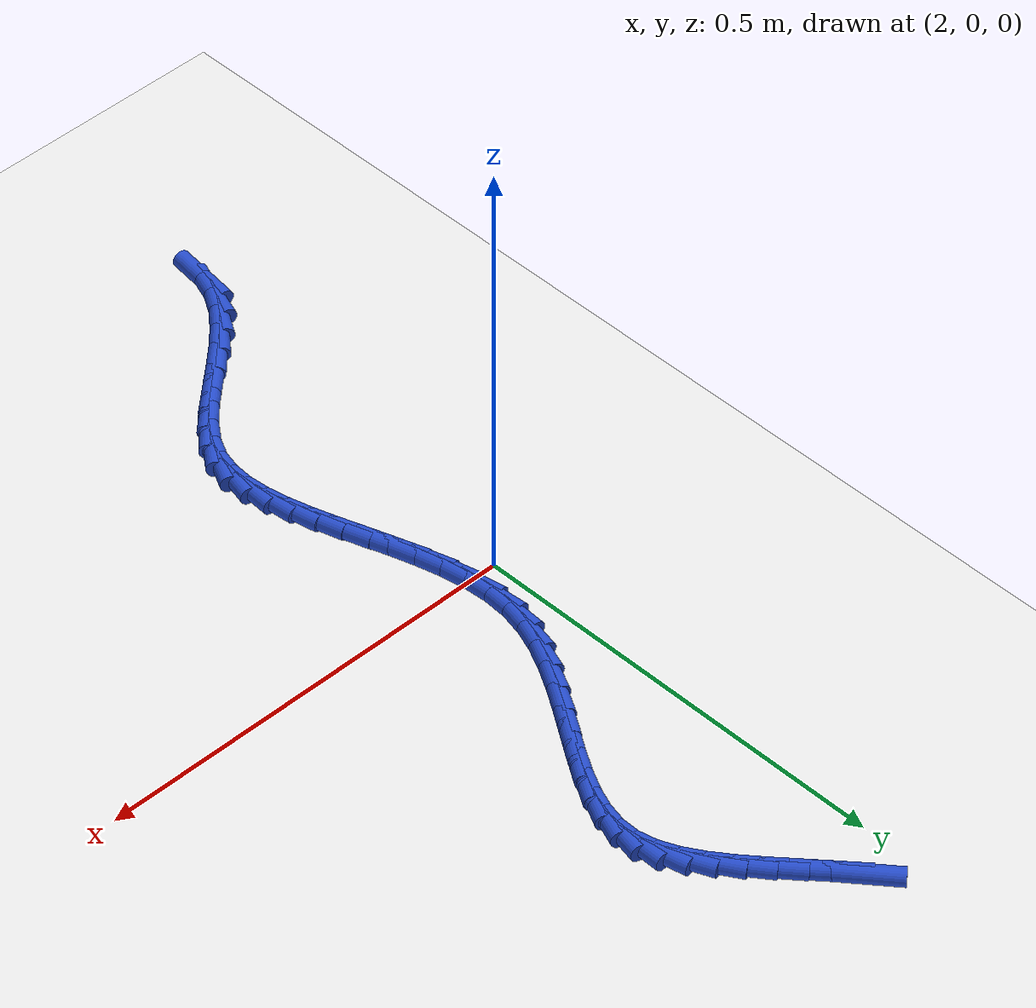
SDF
<sdf version="1.6">
 <world name="default">
  <model name="ground_plane">
   <static>1</static>
   <link name="link">
    <collision name="collision">
     <geometry><plane><normal>0 0 1</normal><size>100 100</size></plane></geometry>
     <surface><friction><ode><mu>100</mu><mu2>50</mu2></ode></friction></surface>
    </collision>
    <visual name="visual">
     <cast_shadows>0</cast_shadows>
     <geometry><plane><normal>0 0 1</normal><size>100 100</size></plane></geometry>
     <material>
      <script><uri>file://media/materials/scripts/gazebo.material</uri><name>Gazebo/WhiteGlow</name></script>
     </material>
    </visual>
   </link>
  </model>
  <model name="line">
   <link name="link_109">
    <pose>2.049838825899695 0.5468741078303482 0.01 0 1.57 -0.880973912480247</pose>
    <collision name="collision">
     <geometry><cylinder><radius>0.01</radius><length>0.08</length></cylinder></geometry>
    </collision>
    <visual name="visual">
     <material>
      <script><name>Gazebo/Blue</name><uri>file://media/materials/scripts/gazebo.material</uri></script>
     </material>
     <geometry><cylinder><radius>0.01</radius><length>0.08</length></cylinder></geometry>
    </visual>
   </link>
   <link name="link_110">
    <pose>2.0691689432498346 0.5234447302433037 0.01 0 1.57 -0.8529924557600874</pose>
    <collision name="collision">
     <geometry><cylinder><radius>0.01</radius><length>0.08</length></cylinder></geometry>
    </collision>
    <visual name="visual">
     <material>
      <script><name>Gazebo/Blue</name><uri>file://media/materials/scripts/gazebo.material</uri></script>
     </material>
     <geometry><cylinder><radius>0.01</radius><length>0.08</length></cylinder></geometry>
    </visual>
   </link>
   <link name="link_111">
    <pose>2.089221849179618 0.5004796149768256 0.01 0 1.57 -0.8502349842190474</pose>
    <collision name="collision">
     <geometry><cylinder><radius>0.01</radius><length>0.08</length></cylinder></geometry>
    </collision>
    <visual name="visual">
     <material>
      <script><name>Gazebo/Blue</name><uri>file://media/materials/scripts/gazebo.material</uri></script>
     </material>
     <geometry><cylinder><radius>0.01</radius><length>0.08</length></cylinder></geometry>
    </visual>
   </link>
   <link name="link_112">
    <pose>2.109081680831488 0.47786180213724955 0.01 0 1.57 -0.8735676255298784</pose>
    <collision name="collision">
     <geometry><cylinder><radius>0.01</radius><length>0.08</length></cylinder></geometry>
    </collision>
    <visual name="visual">
     <material>
      <script><name>Gazebo/Blue</name><uri>file://media/materials/scripts/gazebo.material</uri></script>
     </material>
     <geometry><cylinder><radius>0.01</radius><length>0.08</length></cylinder></geometry>
    </visual>
   </link>
   <link name="link_113">
    <pose>2.127832575347887 0.455474331830912 0.01 0 1.57 -0.9267056269097056</pose>
    <collision name="collision">
     <geometry><cylinder><radius>0.01</radius><length>0.08</length></cylinder></geometry>
    </collision>
    <visual name="visual">
     <material>
      <script><name>Gazebo/Blue</name><uri>file://media/materials/scripts/gazebo.material</uri></script>
     </material>
     <geometry><cylinder><radius>0.01</radius><length>0.08</length></cylinder></geometry>
    </visual>
   </link>
   <link name="link_114">
    <pose>2.1445586698712567 0.4332002441641488 0.01 0 1.57 -1.0166674572007703</pose>
    <collision name="collision">
     <geometry><cylinder><radius>0.01</radius><length>0.08</length></cylinder></geometry>
    </collision>
    <visual name="visual">
     <material>
      <script><name>Gazebo/Blue</name><uri>file://media/materials/scripts/gazebo.material</uri></script>
     </material>
     <geometry><cylinder><radius>0.01</radius><length>0.08</length></cylinder></geometry>
    </visual>
   </link>
   <link name="link_115">
    <pose>2.1583441015440394 0.4109225792432959 0.01 0 1.57 -1.1535361706849527</pose>
    <collision name="collision">
     <geometry><cylinder><radius>0.01</radius><length>0.08</length></cylinder></geometry>
    </collision>
    <visual name="visual">
     <material>
      <script><name>Gazebo/Blue</name><uri>file://media/materials/scripts/gazebo.material</uri></script>
     </material>
     <geometry><cylinder><radius>0.01</radius><length>0.08</length></cylinder></geometry>
    </visual>
   </link>
   <link name="link_116">
    <pose>2.1682730075086774 0.38852437717468985 0.01 0 1.57 -1.3468139917790096</pose>
    <collision name="collision">
     <geometry><cylinder><radius>0.01</radius><length>0.08</length></cylinder></geometry>
    </collision>
    <visual name="visual">
     <material>
      <script><name>Gazebo/Blue</name><uri>file://media/materials/scripts/gazebo.material</uri></script>
     </material>
     <geometry><cylinder><radius>0.01</radius><length>0.08</length></cylinder></geometry>
    </visual>
   </link>
   <link name="link_117">
    <pose>2.1734295249076134 0.3658886780646667 0.01 0 1.57 1.5586210828481701</pose>
    <collision name="collision">
     <geometry><cylinder><radius>0.01</radius><length>0.08</length></cylinder></geometry>
    </collision>
    <visual name="visual">
     <material>
      <script><name>Gazebo/Blue</name><uri>file://media/materials/scripts/gazebo.material</uri></script>
     </material>
     <geometry><cylinder><radius>0.01</radius><length>0.08</length></cylinder></geometry>
    </visual>
   </link>
   <link name="link_118">
    <pose>2.173149775118375 0.34291287837829293 0.01 0 1.57 1.3520146494756538</pose>
    <collision name="collision">
     <geometry><cylinder><radius>0.01</radius><length>0.08</length></cylinder></geometry>
    </collision>
    <visual name="visual">
     <material>
      <script><name>Gazebo/Blue</name><uri>file://media/materials/scripts/gazebo.material</uri></script>
     </material>
     <geometry><cylinder><radius>0.01</radius><length>0.08</length></cylinder></geometry>
    </visual>
   </link>
   <link name="link_119">
    <pose>2.1679579424619666 0.3195620623778728 0.01 0 1.57 1.2000010628829652</pose>
    <collision name="collision">
     <geometry><cylinder><radius>0.01</radius><length>0.08</length></cylinder></geometry>
    </collision>
    <visual name="visual">
     <material>
      <script><name>Gazebo/Blue</name><uri>file://media/materials/scripts/gazebo.material</uri></script>
     </material>
     <geometry><cylinder><radius>0.01</radius><length>0.08</length></cylinder></geometry>
    </visual>
   </link>
   <link name="link_120">
    <pose>2.1587280265337965 0.2958212444358895 0.01 0 1.57 1.096568361443968</pose>
    <collision name="collision">
     <geometry><cylinder><radius>0.01</radius><length>0.08</length></cylinder></geometry>
    </collision>
    <visual name="visual">
     <material>
      <script><name>Gazebo/Blue</name><uri>file://media/materials/scripts/gazebo.material</uri></script>
     </material>
     <geometry><cylinder><radius>0.01</radius><length>0.08</length></cylinder></geometry>
    </visual>
   </link>
   <link name="link_121">
    <pose>2.1463340757850973 0.2716754417083011 0.01 0 1.57 1.0320404418311988</pose>
    <collision name="collision">
     <geometry><cylinder><radius>0.01</radius><length>0.08</length></cylinder></geometry>
    </collision>
    <visual name="visual">
     <material>
      <script><name>Gazebo/Blue</name><uri>file://media/materials/scripts/gazebo.material</uri></script>
     </material>
     <geometry><cylinder><radius>0.01</radius><length>0.08</length></cylinder></geometry>
    </visual>
   </link>
   <link name="link_122">
    <pose>2.131650138667105 0.24710967135106604 0.01 0 1.57 0.9986672610924294</pose>
    <collision name="collision">
     <geometry><cylinder><radius>0.01</radius><length>0.08</length></cylinder></geometry>
    </collision>
    <visual name="visual">
     <material>
      <script><name>Gazebo/Blue</name><uri>file://media/materials/scripts/gazebo.material</uri></script>
     </material>
     <geometry><cylinder><radius>0.01</radius><length>0.08</length></cylinder></geometry>
    </visual>
   </link>
   <link name="link_123">
    <pose>2.1155502636310515 0.2221089505201421 0.01 0 1.57 0.9916958496778654</pose>
    <collision name="collision">
     <geometry><cylinder><radius>0.01</radius><length>0.08</length></cylinder></geometry>
    </collision>
    <visual name="visual">
     <material>
      <script><name>Gazebo/Blue</name><uri>file://media/materials/scripts/gazebo.material</uri></script>
     </material>
     <geometry><cylinder><radius>0.01</radius><length>0.08</length></cylinder></geometry>
    </visual>
   </link>
   <link name="link_124">
    <pose>2.0989084991281732 0.1966582963714883 0.01 0 1.57 1.009084948471666</pose>
    <collision name="collision">
     <geometry><cylinder><radius>0.01</radius><length>0.08</length></cylinder></geometry>
    </collision>
    <visual name="visual">
     <material>
      <script><name>Gazebo/Blue</name><uri>file://media/materials/scripts/gazebo.material</uri></script>
     </material>
     <geometry><cylinder><radius>0.01</radius><length>0.08</length></cylinder></geometry>
    </visual>
   </link>
   <link name="link_125">
    <pose>2.0825988936097013 0.17074272606106242 0.01 0 1.57 1.0510714205902723</pose>
    <collision name="collision">
     <geometry><cylinder><radius>0.01</radius><length>0.08</length></cylinder></geometry>
    </collision>
    <visual name="visual">
     <material>
      <script><name>Gazebo/Blue</name><uri>file://media/materials/scripts/gazebo.material</uri></script>
     </material>
     <geometry><cylinder><radius>0.01</radius><length>0.08</length></cylinder></geometry>
    </visual>
   </link>
   <link name="link_126">
    <pose>2.0674954955268725 0.1443472567448225 0.01 0 1.57 1.1197830484665048</pose>
    <collision name="collision">
     <geometry><cylinder><radius>0.01</radius><length>0.08</length></cylinder></geometry>
    </collision>
    <visual name="visual">
     <material>
      <script><name>Gazebo/Blue</name><uri>file://media/materials/scripts/gazebo.material</uri></script>
     </material>
     <geometry><cylinder><radius>0.01</radius><length>0.08</length></cylinder></geometry>
    </visual>
   </link>
   <link name="link_127">
    <pose>2.05447235333092 0.11745690557872744 0.01 0 1.57 1.218640997883794</pose>
    <collision name="collision">
     <geometry><cylinder><radius>0.01</radius><length>0.08</length></cylinder></geometry>
    </collision>
    <visual name="visual">
     <material>
      <script><name>Gazebo/Blue</name><uri>file://media/materials/scripts/gazebo.material</uri></script>
     </material>
     <geometry><cylinder><radius>0.01</radius><length>0.08</length></cylinder></geometry>
    </visual>
   </link>
   <link name="link_128">
    <pose>2.0444035154730775 0.09005668971873515 0.01 0 1.57 1.3509339833997311</pose>
    <collision name="collision">
     <geometry><cylinder><radius>0.01</radius><length>0.08</length></cylinder></geometry>
    </collision>
    <visual name="visual">
     <material>
      <script><name>Gazebo/Blue</name><uri>file://media/materials/scripts/gazebo.material</uri></script>
     </material>
     <geometry><cylinder><radius>0.01</radius><length>0.08</length></cylinder></geometry>
    </visual>
   </link>
   <link name="link_129">
    <pose>2.0381629665169494 0.06213163256946187 0.01 0 1.57 1.5053386777767457</pose>
    <collision name="collision">
     <geometry><cylinder><radius>0.01</radius><length>0.08</length></cylinder></geometry>
    </collision>
    <visual name="visual">
     <material>
      <script><name>Gazebo/Blue</name><uri>file://media/materials/scripts/gazebo.material</uri></script>
     </material>
     <geometry><cylinder><radius>0.01</radius><length>0.08</length></cylinder></geometry>
    </visual>
   </link>
   <link name="link_130">
    <pose>2.036299144202751 0.03369859829626457 0.01 0 1.57 -1.5022544891681802</pose>
    <collision name="collision">
     <geometry><cylinder><radius>0.01</radius><length>0.08</length></cylinder></geometry>
    </collision>
    <visual name="visual">
     <material>
      <script><name>Gazebo/Blue</name><uri>file://media/materials/scripts/gazebo.material</uri></script>
     </material>
     <geometry><cylinder><radius>0.01</radius><length>0.08</length></cylinder></geometry>
    </visual>
   </link>
   <link name="link_131">
    <pose>2.0382774972466877 0.004880374980574038 0.01 0 1.57 -1.3983588514070062</pose>
    <collision name="collision">
     <geometry><cylinder><radius>0.01</radius><length>0.08</length></cylinder></geometry>
    </collision>
    <visual name="visual">
     <material>
      <script><name>Gazebo/Blue</name><uri>file://media/materials/scripts/gazebo.material</uri></script>
     </material>
     <geometry><cylinder><radius>0.01</radius><length>0.08</length></cylinder></geometry>
    </visual>
   </link>
   <link name="link_132">
    <pose>2.0433385560118418 -0.0241782507050291 0.01 0 1.57 -1.3227294950769504</pose>
    <collision name="collision">
     <geometry><cylinder><radius>0.01</radius><length>0.08</length></cylinder></geometry>
    </collision>
    <visual name="visual">
     <material>
      <script><name>Gazebo/Blue</name><uri>file://media/materials/scripts/gazebo.material</uri></script>
     </material>
     <geometry><cylinder><radius>0.01</radius><length>0.08</length></cylinder></geometry>
    </visual>
   </link>
   <link name="link_133">
    <pose>2.0507228508613 -0.05333249208796492 0.01 0 1.57 -1.2725279466722725</pose>
    <collision name="collision">
     <geometry><cylinder><radius>0.01</radius><length>0.08</length></cylinder></geometry>
    </collision>
    <visual name="visual">
     <material>
      <script><name>Gazebo/Blue</name><uri>file://media/materials/scripts/gazebo.material</uri></script>
     </material>
     <geometry><cylinder><radius>0.01</radius><length>0.08</length></cylinder></geometry>
    </visual>
   </link>
   <link name="link_134">
    <pose>2.059670912158147 -0.08243756249565118 0.01 0 1.57 -1.2454601623811488</pose>
    <collision name="collision">
     <geometry><cylinder><radius>0.01</radius><length>0.08</length></cylinder></geometry>
    </collision>
    <visual name="visual">
     <material>
      <script><name>Gazebo/Blue</name><uri>file://media/materials/scripts/gazebo.material</uri></script>
     </material>
     <geometry><cylinder><radius>0.01</radius><length>0.08</length></cylinder></geometry>
    </visual>
   </link>
   <link name="link_135">
    <pose>2.069423270265467 -0.11134867525550796 0.01 0 1.57 -1.2404693875137387</pose>
    <collision name="collision">
     <geometry><cylinder><radius>0.01</radius><length>0.08</length></cylinder></geometry>
    </collision>
    <visual name="visual">
     <material>
      <script><name>Gazebo/Blue</name><uri>file://media/materials/scripts/gazebo.material</uri></script>
     </material>
     <geometry><cylinder><radius>0.01</radius><length>0.08</length></cylinder></geometry>
    </visual>
   </link>
   <link name="link_136">
    <pose>2.0792204555463454 -0.13992104369495462 0.01 0 1.57 -1.2580569640293948</pose>
    <collision name="collision">
     <geometry><cylinder><radius>0.01</radius><length>0.08</length></cylinder></geometry>
    </collision>
    <visual name="visual">
     <material>
      <script><name>Gazebo/Blue</name><uri>file://media/materials/scripts/gazebo.material</uri></script>
     </material>
     <geometry><cylinder><radius>0.01</radius><length>0.08</length></cylinder></geometry>
    </visual>
   </link>
   <link name="link_137">
    <pose>2.0883029983638663 -0.16800988114141036 0.01 0 1.57 -1.3005085506175436</pose>
    <collision name="collision">
     <geometry><cylinder><radius>0.01</radius><length>0.08</length></cylinder></geometry>
    </collision>
    <visual name="visual">
     <material>
      <script><name>Gazebo/Blue</name><uri>file://media/materials/scripts/gazebo.material</uri></script>
     </material>
     <geometry><cylinder><radius>0.01</radius><length>0.08</length></cylinder></geometry>
    </visual>
   </link>
   <link name="link_138">
    <pose>2.095911429081116 -0.19547040092229473 0.01 0 1.57 -1.3720548498477316</pose>
    <collision name="collision">
     <geometry><cylinder><radius>0.01</radius><length>0.08</length></cylinder></geometry>
    </collision>
    <visual name="visual">
     <material>
      <script><name>Gazebo/Blue</name><uri>file://media/materials/scripts/gazebo.material</uri></script>
     </material>
     <geometry><cylinder><radius>0.01</radius><length>0.08</length></cylinder></geometry>
    </visual>
   </link>
   <link name="link_139">
    <pose>2.1012862780611794 -0.22215781636502696 0.01 0 1.57 -1.4786312652828728</pose>
    <collision name="collision">
     <geometry><cylinder><radius>0.01</radius><length>0.08</length></cylinder></geometry>
    </collision>
    <visual name="visual">
     <material>
      <script><name>Gazebo/Blue</name><uri>file://media/materials/scripts/gazebo.material</uri></script>
     </material>
     <geometry><cylinder><radius>0.01</radius><length>0.08</length></cylinder></geometry>
    </visual>
   </link>
   <link name="link_140">
    <pose>2.10366807566714 -0.24792734079702705 0.01 0 1.57 1.515373647407077</pose>
    <collision name="collision">
     <geometry><cylinder><radius>0.01</radius><length>0.08</length></cylinder></geometry>
    </collision>
    <visual name="visual">
     <material>
      <script><name>Gazebo/Blue</name><uri>file://media/materials/scripts/gazebo.material</uri></script>
     </material>
     <geometry><cylinder><radius>0.01</radius><length>0.08</length></cylinder></geometry>
    </visual>
   </link>
   <link name="link_141">
    <pose>2.1022973522620827 -0.27263418754571284 0.01 0 1.57 1.3255025481158271</pose>
    <collision name="collision">
     <geometry><cylinder><radius>0.01</radius><length>0.08</length></cylinder></geometry>
    </collision>
    <visual name="visual">
     <material>
      <script><name>Gazebo/Blue</name><uri>file://media/materials/scripts/gazebo.material</uri></script>
     </material>
     <geometry><cylinder><radius>0.01</radius><length>0.08</length></cylinder></geometry>
    </visual>
   </link>
   <link name="link_142">
    <pose>2.0964146382090934 -0.2961335699385044 0.01 0 1.57 1.1083746247869593</pose>
    <collision name="collision">
     <geometry><cylinder><radius>0.01</radius><length>0.08</length></cylinder></geometry>
    </collision>
    <visual name="visual">
     <material>
      <script><name>Gazebo/Blue</name><uri>file://media/materials/scripts/gazebo.material</uri></script>
     </material>
     <geometry><cylinder><radius>0.01</radius><length>0.08</length></cylinder></geometry>
    </visual>
   </link>
   <link name="link_143">
    <pose>2.085362054016017 -0.3183066520718115 0.01 0 1.57 0.9284079010948055</pose>
    <collision name="collision">
     <geometry><cylinder><radius>0.01</radius><length>0.08</length></cylinder></geometry>
    </collision>
    <visual name="visual">
     <material>
      <script><name>Gazebo/Blue</name><uri>file://media/materials/scripts/gazebo.material</uri></script>
     </material>
     <geometry><cylinder><radius>0.01</radius><length>0.08</length></cylinder></geometry>
    </visual>
   </link>
   <link name="link_144">
    <pose>2.069632198387641 -0.33932848278832434 0.01 0 1.57 0.8119045633398296</pose>
    <collision name="collision">
     <geometry><cylinder><radius>0.01</radius><length>0.08</length></cylinder></geometry>
    </collision>
    <visual name="visual">
     <material>
      <script><name>Gazebo/Blue</name><uri>file://media/materials/scripts/gazebo.material</uri></script>
     </material>
     <geometry><cylinder><radius>0.01</radius><length>0.08</length></cylinder></geometry>
    </visual>
   </link>
   <link name="link_145">
    <pose>2.0504456801980586 -0.35956007802203815 0.01 0 1.57 0.7464589176687326</pose>
    <collision name="collision">
     <geometry><cylinder><radius>0.01</radius><length>0.08</length></cylinder></geometry>
    </collision>
    <visual name="visual">
     <material>
      <script><name>Gazebo/Blue</name><uri>file://media/materials/scripts/gazebo.material</uri></script>
     </material>
     <geometry><cylinder><radius>0.01</radius><length>0.08</length></cylinder></geometry>
    </visual>
   </link>
   <link name="link_146">
    <pose>2.0290346180681906 -0.3793653938226634 0.01 0 1.57 0.7223568452874728</pose>
    <collision name="collision">
     <geometry><cylinder><radius>0.01</radius><length>0.08</length></cylinder></geometry>
    </collision>
    <visual name="visual">
     <material>
      <script><name>Gazebo/Blue</name><uri>file://media/materials/scripts/gazebo.material</uri></script>
     </material>
     <geometry><cylinder><radius>0.01</radius><length>0.08</length></cylinder></geometry>
    </visual>
   </link>
   <link name="link_147">
    <pose>2.0066311306189584 -0.3991083862399101 0.01 0 1.57 0.7352330270145364</pose>
    <collision name="collision">
     <geometry><cylinder><radius>0.01</radius><length>0.08</length></cylinder></geometry>
    </collision>
    <visual name="visual">
     <material>
      <script><name>Gazebo/Blue</name><uri>file://media/materials/scripts/gazebo.material</uri></script>
     </material>
     <geometry><cylinder><radius>0.01</radius><length>0.08</length></cylinder></geometry>
    </visual>
   </link>
   <link name="link_148">
    <pose>1.9844673364712817 -0.41915301132348837 0.01 0 1.57 0.7858385162045908</pose>
    <collision name="collision">
     <geometry><cylinder><radius>0.01</radius><length>0.08</length></cylinder></geometry>
    </collision>
    <visual name="visual">
     <material>
      <script><name>Gazebo/Blue</name><uri>file://media/materials/scripts/gazebo.material</uri></script>
     </material>
     <geometry><cylinder><radius>0.01</radius><length>0.08</length></cylinder></geometry>
    </visual>
   </link>
   <link name="link_149">
    <pose>1.963775354246081 -0.43986322512310894 0.01 0 1.57 0.8795542106758942</pose>
    <collision name="collision">
     <geometry><cylinder><radius>0.01</radius><length>0.08</length></cylinder></geometry>
    </collision>
    <visual name="visual">
     <material>
      <script><name>Gazebo/Blue</name><uri>file://media/materials/scripts/gazebo.material</uri></script>
     </material>
     <geometry><cylinder><radius>0.01</radius><length>0.08</length></cylinder></geometry>
    </visual>
   </link>
   <link name="link_150">
    <pose>1.9457873025642778 -0.4616029836884806 0.01 0 1.57 1.024926228594198</pose>
    <collision name="collision">
     <geometry><cylinder><radius>0.01</radius><length>0.08</length></cylinder></geometry>
    </collision>
    <visual name="visual">
     <material>
      <script><name>Gazebo/Blue</name><uri>file://media/materials/scripts/gazebo.material</uri></script>
     </material>
     <geometry><cylinder><radius>0.01</radius><length>0.08</length></cylinder></geometry>
    </visual>
   </link>
   <link name="link_151">
    <pose>1.9317353000467934 -0.4847362430693143 0.01 0 1.57 1.2277273761137304</pose>
    <collision name="collision">
     <geometry><cylinder><radius>0.01</radius><length>0.08</length></cylinder></geometry>
    </collision>
    <visual name="visual">
     <material>
      <script><name>Gazebo/Blue</name><uri>file://media/materials/scripts/gazebo.material</uri></script>
     </material>
     <geometry><cylinder><radius>0.01</radius><length>0.08</length></cylinder></geometry>
    </visual>
   </link>
   <link name="link_152">
    <pose>1.9228452398080178 -0.5096248749113117 0.01 0 1.57 1.445114667200972</pose>
    <collision name="collision">
     <geometry><cylinder><radius>0.01</radius><length>0.08</length></cylinder></geometry>
    </collision>
    <visual name="visual">
     <material>
      <script><name>Gazebo/Blue</name><uri>file://media/materials/scripts/gazebo.material</uri></script>
     </material>
     <geometry><cylinder><radius>0.01</radius><length>0.08</length></cylinder></geometry>
    </visual>
   </link>
  </model>
 </world>
</sdf>
